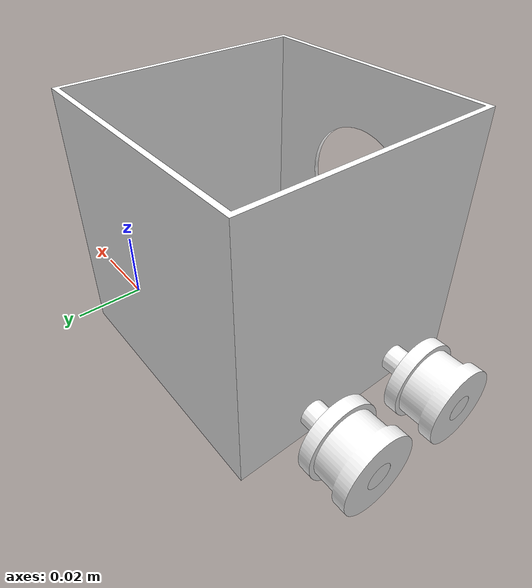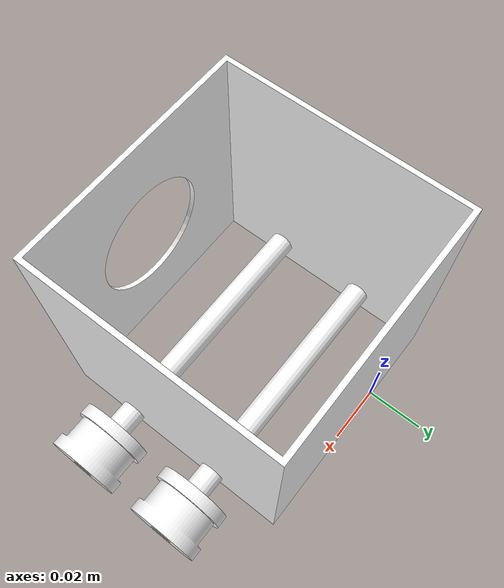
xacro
<?xml version="1.0" ?>
<robot name="test_robot2_assem" xmlns:xacro="http://www.ros.org/wiki/xacro">
 <material name="silver">
  <color rgba="1 1 1 2"/>
 </material>
<link name="base_link">
  <inertial>
    <origin rpy="0 0 0" xyz="1.0007008474989684e-16 0.0024718672211768854 0.04992269434636615"/>
    <mass value="0.1979037709481497"/>
    <inertia ixx="0.00048" ixy="0.0" ixz="-0.0" iyy="0.00064" iyz="-0.0" izz="0.000501"/>
  </inertial>
  <visual>
    <origin rpy="0 0 0" xyz="0 0 0"/>
    <geometry>
      <mesh filename="package://test_robot2_assem_description/meshes/base_link.stl" scale="0.001 0.001 0.001"/>
    </geometry>
    <material name="silver"/>
  </visual>
  <collision>
    <origin rpy="0 0 0" xyz="0 0 0"/>
    <geometry>
      <mesh filename="package://test_robot2_assem_description/meshes/base_link.stl" scale="0.001 0.001 0.001"/>
    </geometry>
  </collision>
</link>

<link name="world"/>
<joint name="joint_base" type="floating">
 <parent link="world"/>
 <child link="base_link"/>
 <origin xyz="0 0 0" rpy="1.57079632679 0 0"/>
</joint>

<link name="test_robot_shaft_v4__1__1">
  <inertial>
    <origin rpy="0 0 0" xyz="0.049999999999999774 -4.787266047606709e-07 4.680090810171844e-07"/>
    <mass value="0.03367787324648258"/>
    <inertia ixx="0.0" ixy="0.0" ixz="0.0" iyy="7.2e-05" iyz="0.0" izz="7.2e-05"/>
  </inertial>
  <visual>
    <origin rpy="0 0 0" xyz="0.05 0.037868 -0.072528"/>
    <geometry>
      <mesh filename="package://test_robot2_assem_description/meshes/test_robot_shaft_v4__1__1.stl" scale="0.001 0.001 0.001"/>
    </geometry>
    <material name="silver"/>
  </visual>
  <collision>
    <origin rpy="0 0 0" xyz="0.05 0.037868 -0.072528"/>
    <geometry>
      <mesh filename="package://test_robot2_assem_description/meshes/test_robot_shaft_v4__1__1.stl" scale="0.001 0.001 0.001"/>
    </geometry>
  </collision>
</link>

<link name="test_robot_shaft_v4_1">
  <inertial>
    <origin rpy="0 0 0" xyz="0.049999999999999774 -4.78726604948021e-07 4.6800908099636773e-07"/>
    <mass value="0.03367787324648258"/>
    <inertia ixx="0.0" ixy="0.0" ixz="0.0" iyy="7.2e-05" iyz="-0.0" izz="7.2e-05"/>
  </inertial>
  <visual>
    <origin rpy="0 0 0" xyz="0.05 0.037868 -0.032528"/>
    <geometry>
      <mesh filename="package://test_robot2_assem_description/meshes/test_robot_shaft_v4_1.stl" scale="0.001 0.001 0.001"/>
    </geometry>
    <material name="silver"/>
  </visual>
  <collision>
    <origin rpy="0 0 0" xyz="0.05 0.037868 -0.032528"/>
    <geometry>
      <mesh filename="package://test_robot2_assem_description/meshes/test_robot_shaft_v4_1.stl" scale="0.001 0.001 0.001"/>
    </geometry>
  </collision>
</link>

<link name="test_robot_wheel_v4__2__1">
  <inertial>
    <origin rpy="0 0 0" xyz="-0.010000000000000217 -4.787267571804144e-07 4.680090810171844e-07"/>
    <mass value="0.028962970991975173"/>
    <inertia ixx="3e-06" ixy="-0.0" ixz="0.0" iyy="3e-06" iyz="0.0" izz="3e-06"/>
  </inertial>
  <visual>
    <origin rpy="0 0 0" xyz="-0.08 0.037868 -0.072528"/>
    <geometry>
      <mesh filename="package://test_robot2_assem_description/meshes/test_robot_wheel_v4__2__1.stl" scale="0.001 0.001 0.001"/>
    </geometry>
    <material name="silver"/>
  </visual>
  <collision>
    <origin rpy="0 0 0" xyz="-0.08 0.037868 -0.072528"/>
    <geometry>
      <mesh filename="package://test_robot2_assem_description/meshes/test_robot_wheel_v4__2__1.stl" scale="0.001 0.001 0.001"/>
    </geometry>
  </collision>
</link>

<link name="test_robot_wheel_v4_1">
  <inertial>
    <origin rpy="0 0 0" xyz="-0.010000000000000217 -4.787267573608256e-07 4.6800908098942884e-07"/>
    <mass value="0.028962970991975173"/>
    <inertia ixx="3e-06" ixy="-0.0" ixz="0.0" iyy="3e-06" iyz="-0.0" izz="3e-06"/>
  </inertial>
  <visual>
    <origin rpy="0 0 0" xyz="-0.08 0.037868 -0.032528"/>
    <geometry>
      <mesh filename="package://test_robot2_assem_description/meshes/test_robot_wheel_v4_1.stl" scale="0.001 0.001 0.001"/>
    </geometry>
    <material name="silver"/>
  </visual>
  <collision>
    <origin rpy="0 0 0" xyz="-0.08 0.037868 -0.032528"/>
    <geometry>
      <mesh filename="package://test_robot2_assem_description/meshes/test_robot_wheel_v4_1.stl" scale="0.001 0.001 0.001"/>
    </geometry>
  </collision>
</link>

<link name="test_robot_wheel_v4__1__1">
  <inertial>
    <origin rpy="0 0 0" xyz="0.009999999999999634 -4.787267378486559e-07 4.680090080755317e-07"/>
    <mass value="0.028962970991975173"/>
    <inertia ixx="3e-06" ixy="-0.0" ixz="0.0" iyy="3e-06" iyz="-0.0" izz="3e-06"/>
  </inertial>
  <visual>
    <origin rpy="0 0 0" xyz="0.08 0.037868 -0.072528"/>
    <geometry>
      <mesh filename="package://test_robot2_assem_description/meshes/test_robot_wheel_v4__1__1.stl" scale="0.001 0.001 0.001"/>
    </geometry>
    <material name="silver"/>
  </visual>
  <collision>
    <origin rpy="0 0 0" xyz="0.08 0.037868 -0.072528"/>
    <geometry>
      <mesh filename="package://test_robot2_assem_description/meshes/test_robot_wheel_v4__1__1.stl" scale="0.001 0.001 0.001"/>
    </geometry>
  </collision>
</link>

<link name="test_robot_wheel_v4__3__1">
  <inertial>
    <origin rpy="0 0 0" xyz="0.009999999999999773 -4.787267565073416e-07 4.680090810171844e-07"/>
    <mass value="0.028962970991975173"/>
    <inertia ixx="3e-06" ixy="-0.0" ixz="-0.0" iyy="3e-06" iyz="-0.0" izz="3e-06"/>
  </inertial>
  <visual>
    <origin rpy="0 0 0" xyz="0.08 0.037868 -0.032528"/>
    <geometry>
      <mesh filename="package://test_robot2_assem_description/meshes/test_robot_wheel_v4__3__1.stl" scale="0.001 0.001 0.001"/>
    </geometry>
    <material name="silver"/>
  </visual>
  <collision>
    <origin rpy="0 0 0" xyz="0.08 0.037868 -0.032528"/>
    <geometry>
      <mesh filename="package://test_robot2_assem_description/meshes/test_robot_wheel_v4__3__1.stl" scale="0.001 0.001 0.001"/>
    </geometry>
  </collision>
</link>

<joint name="joint_shaft_1" type="fixed">
  <origin rpy="0 0 0" xyz="-0.05 -0.037868 0.072528"/>
  <parent link="base_link"/>
  <child link="test_robot_shaft_v4__1__1"/>
</joint>

<joint name="joint_shaft_2" type="fixed">
  <origin rpy="0 0 0" xyz="-0.05 -0.037868 0.032528"/>
  <parent link="base_link"/>
  <child link="test_robot_shaft_v4_1"/>
</joint>

<joint name="joint_wheel_1" type="continuous">
  <origin rpy="0 0 0" xyz="0.13 0.0 0.0"/>
  <parent link="test_robot_shaft_v4__1__1"/>
  <child link="test_robot_wheel_v4__2__1"/>
  <axis xyz="-1.0 0.0 0.0"/>
</joint>

<joint name="joint_wheel_2" type="continuous">
  <origin rpy="0 0 0" xyz="0.13 0.0 0.0"/>
  <parent link="test_robot_shaft_v4_1"/>
  <child link="test_robot_wheel_v4_1"/>
  <axis xyz="-1.0 0.0 0.0"/>
</joint>

<joint name="joint_wheel_3" type="continuous">
  <origin rpy="0 0 0" xyz="-0.03 0.0 0.0"/>
  <parent link="test_robot_shaft_v4__1__1"/>
  <child link="test_robot_wheel_v4__1__1"/>
  <axis xyz="-1.0 0.0 0.0"/>
</joint>

<joint name="joint_wheel_4" type="continuous">
  <origin rpy="0 0 0" xyz="-0.03 0.0 0.0"/>
  <parent link="test_robot_shaft_v4_1"/>
  <child link="test_robot_wheel_v4__3__1"/>
  <axis xyz="-1.0 0.0 0.0"/>
</joint>
<gazebo>
  <plugin name="control" filename="libgazebo_ros_control.so">
    <legacyModeNS>true</legacyModeNS>
  </plugin>
</gazebo>
<gazebo reference="base_link">
 <mu1 value="1"/>
 <mu2 value="1"/>
 <material>Gazebo/Indigo</material>
</gazebo>
<gazebo reference="test_robot_shaft_v4__1__1">
 <mu1 value="1"/>
 <mu2 value="1"/>
 <material>Gazebo/Indigo</material>
</gazebo>
<gazebo reference="test_robot_shaft_v4_1">
 <mu1 value="1"/>
 <mu2 value="1"/>
 <material>Gazebo/Indigo</material>
</gazebo>
<gazebo reference="test_robot_wheel_v4_1">
 <mu1 value="0.2"/>
 <mu2 value="0.2"/>
 <material>Gazebo/Yellow</material>
</gazebo>
<gazebo reference="test_robot_wheel_v4__2__1">
 <mu1 value="0.2"/>
 <mu2 value="0.2"/>
 <material>Gazebo/Red</material>
</gazebo>
<gazebo reference="test_robot_wheel_v4__1__1">
 <mu1 value="0.2"/>
 <mu2 value="0.2"/>
 <material>Gazebo/Blue</material>
</gazebo>
<gazebo reference="test_robot_wheel_v4__3__1">
 <mu1 value="0.2"/>
 <mu2 value="0.2"/>
 <material>Gazebo/Indigo</material>
</gazebo>

<transmission name="trans1">
 <type>transmission_interface/SimpleTransmission</type>
 <joint name="joint_wheel_1">
  <hardwareInterface>hardware_interface/VelocityJointInterface</hardwareInterface>
 </joint>
 <actuator name="motor1">
  <hardwareInterface>hardware_interface/VelocityJointInterface</hardwareInterface>
  <mechanismReduction>1</mechanismReduction>
 </actuator>
</transmission>

<transmission name="trans3">
 <type>transmission_interface/SimpleTransmission</type>
 <joint name="joint_wheel_3">
  <hardwareInterface>hardware_interface/VelocityJointInterface</hardwareInterface>
 </joint>
 <actuator name="motor3">
  <hardwareInterface>hardware_interface/VelocityJointInterface</hardwareInterface>
  <mechanismReduction>1</mechanismReduction>
 </actuator>
</transmission>

<gazebo>
 <plugin name="gazebo_ros_control" filename="libgazebo_ros_control.so">
  <robotSimType>gazebo_ros_control/DefaultRobotHWSim</robotSimType>
  <robotNamespace>/test_robot2_assem</robotNamespace>
  <legacyModeNS>true</legacyModeNS>
 </plugin>
</gazebo>

</robot>
